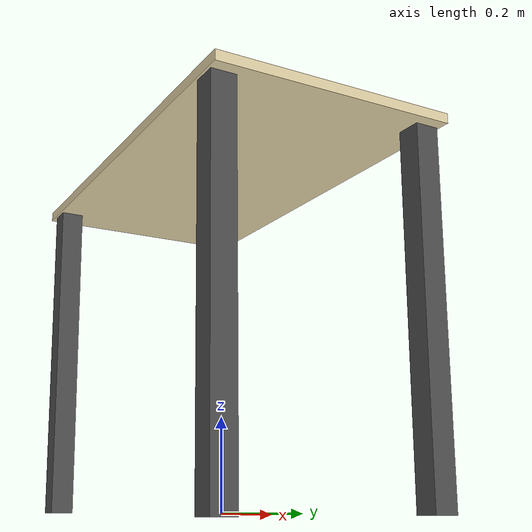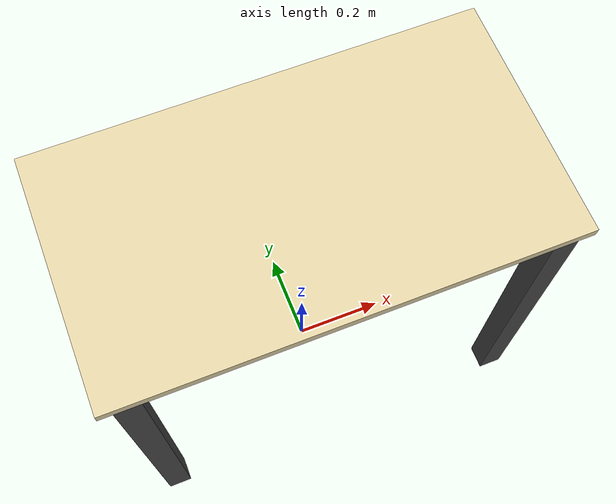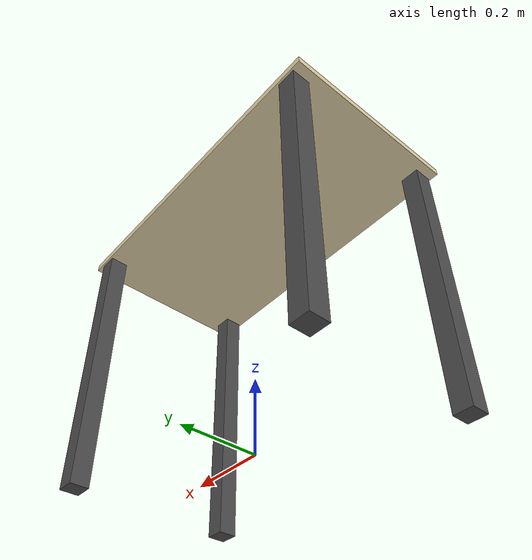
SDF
<?xml version="1.0"?>
<sdf version="1.10">
  <model name="exam_desk">
    <static>true</static>
    <link name="desk">
      <inertial>
        <mass>5</mass>
        <inertia>
          <ixx>0.5</ixx>
          <iyy>0.5</iyy>
          <izz>0.5</izz>
        </inertia>
      </inertial>

      <!-- Collision: tabletop -->
      <collision name="col_top">
        <geometry>
          <box>
            <size>0.9 0.5 0.02</size>
          </box>
        </geometry>
        <pose>0 0 0.74 0 0 0</pose>
      </collision>

      <!-- Collision: thicker legs (0.05m x 0.05m x 0.74m) -->
      <collision name="col_leg1">
        <geometry>
          <box><size>0.05 0.05 0.74</size></box>
        </geometry>
        <pose>0.40 0.22 0.37 0 0 0</pose>
      </collision>
      <collision name="col_leg2">
        <geometry>
          <box><size>0.05 0.05 0.74</size></box>
        </geometry>
        <pose>-0.40 0.22 0.37 0 0 0</pose>
      </collision>
      <collision name="col_leg3">
        <geometry>
          <box><size>0.05 0.05 0.74</size></box>
        </geometry>
        <pose>0.40 -0.22 0.37 0 0 0</pose>
      </collision>
      <collision name="col_leg4">
        <geometry>
          <box><size>0.05 0.05 0.74</size></box>
        </geometry>
        <pose>-0.40 -0.22 0.37 0 0 0</pose>
      </collision>

      <!-- Visual: tabletop -->
      <visual name="visual_top">
        <geometry>
          <box><size>0.9 0.5 0.02</size></box>
        </geometry>
        <pose>0 0 0.74 0 0 0</pose>
        <material>
          <diffuse>0.88 0.82 0.65 1</diffuse>
        </material>
      </visual>

      <!-- Visual: thicker legs -->
      <visual name="visual_leg1">
        <geometry><box><size>0.05 0.05 0.74</size></box></geometry>
        <pose>0.40 0.22 0.37 0 0 0</pose>
        <material><diffuse>0.3 0.3 0.3 1</diffuse></material>
      </visual>
      <visual name="visual_leg2">
        <geometry><box><size>0.05 0.05 0.74</size></box></geometry>
        <pose>-0.40 0.22 0.37 0 0 0</pose>
        <material><diffuse>0.3 0.3 0.3 1</diffuse></material>
      </visual>
      <visual name="visual_leg3">
        <geometry><box><size>0.05 0.05 0.74</size></box></geometry>
        <pose>0.40 -0.22 0.37 0 0 0</pose>
        <material><diffuse>0.3 0.3 0.3 1</diffuse></material>
      </visual>
      <visual name="visual_leg4">
        <geometry><box><size>0.05 0.05 0.74</size></box></geometry>
        <pose>-0.40 -0.22 0.37 0 0 0</pose>
        <material><diffuse>0.3 0.3 0.3 1</diffuse></material>
      </visual>

    </link>
  </model>
</sdf>
